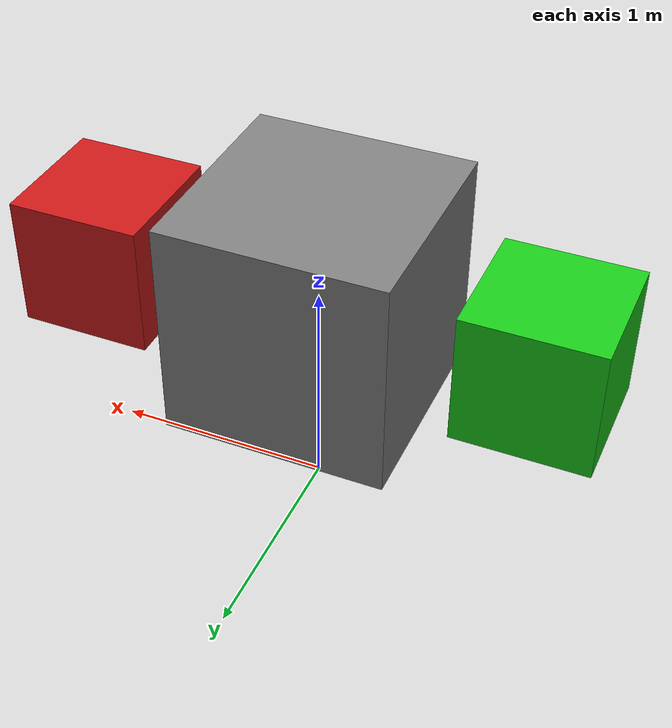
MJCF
<mujoco>
  <option gravity="0 0 -9.81"/>
  <worldbody>
    <!-- Object before explosion (invisible after explosion) -->
    <body name="object" pos="0 0 1">
      <geom type="box" size="0.5 0.5 0.5" rgba="0.5 0.5 0.5 1"/>
    </body>
    <!-- Fragment 1 -->
    <body name="fragment1" pos="-1 0 1">
      <geom type="box" size="0.3 0.3 0.3" density="1" rgba="0.1 0.8 0.1 1"/>
      <joint name="fragment1_joint" type="free"/>
    </body>
    <!-- Fragment 2 -->
    <body name="fragment2" pos="1 0 1">
      <geom type="box" size="0.3 0.3 0.3" density="1" rgba="0.8 0.1 0.1 1"/>
      <joint name="fragment2_joint" type="free"/>
    </body>
  </worldbody>
</mujoco>
